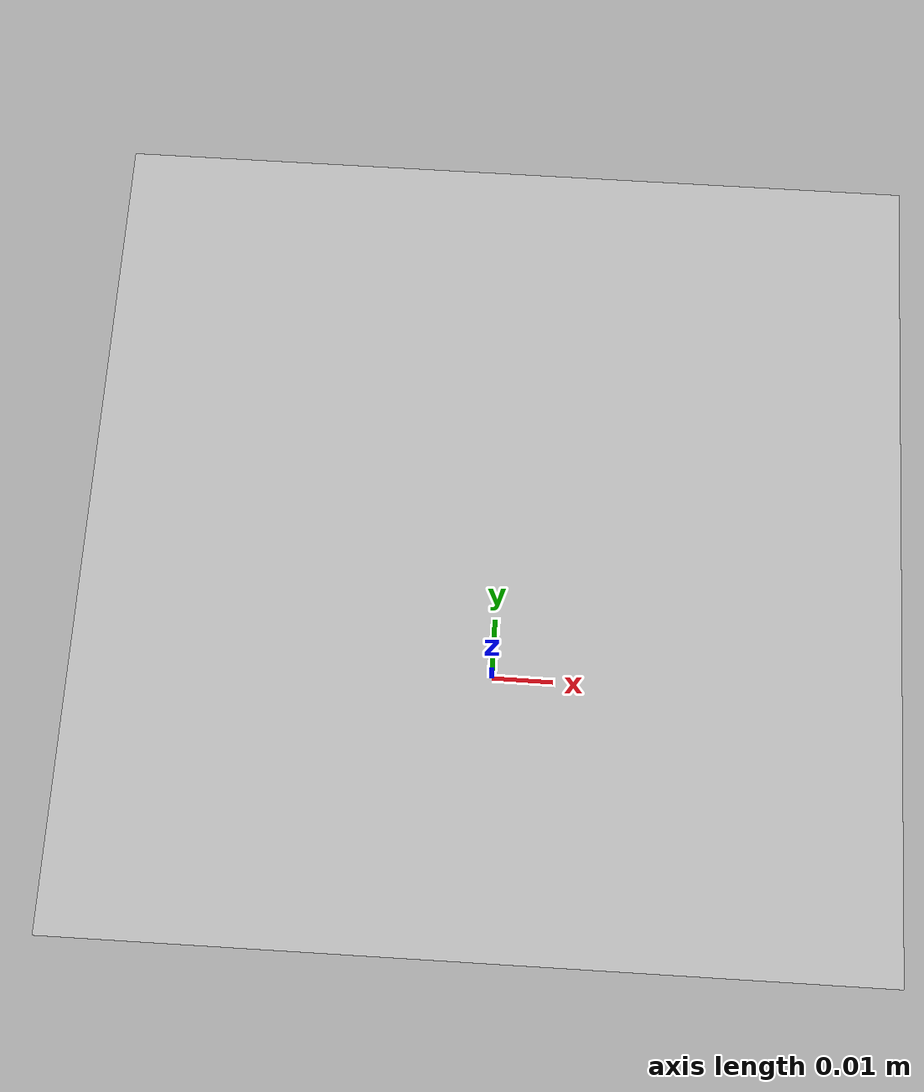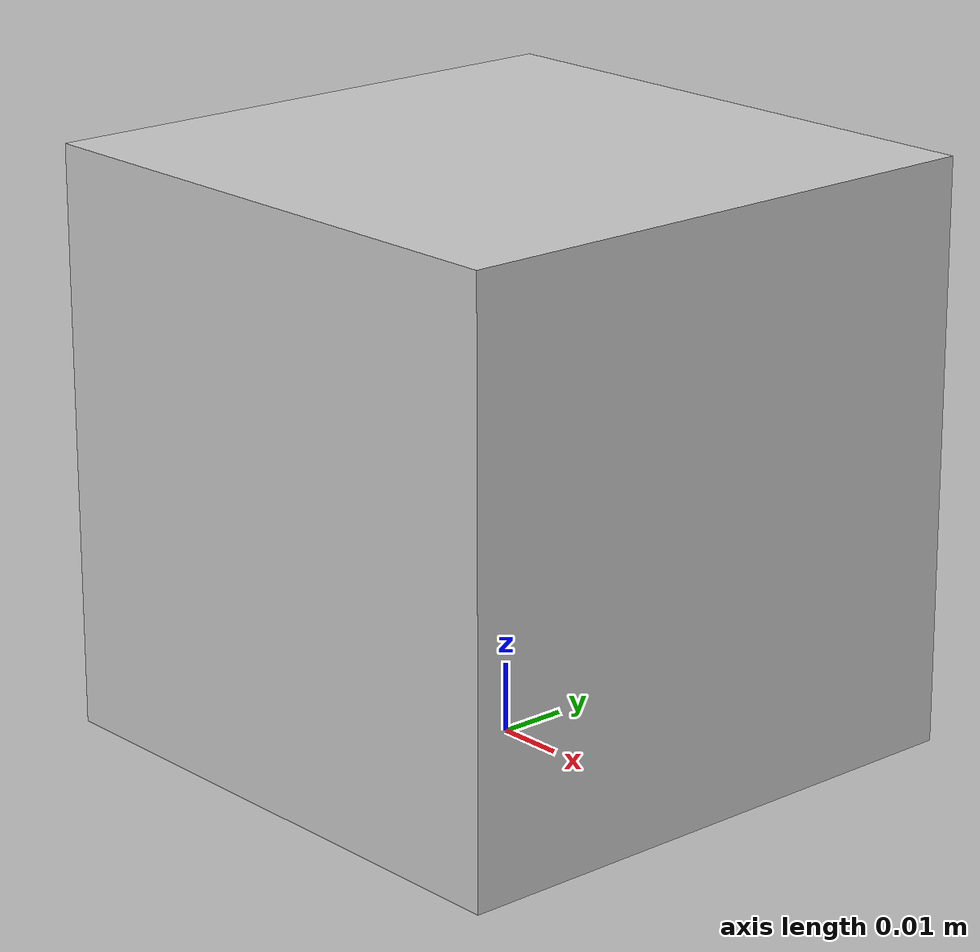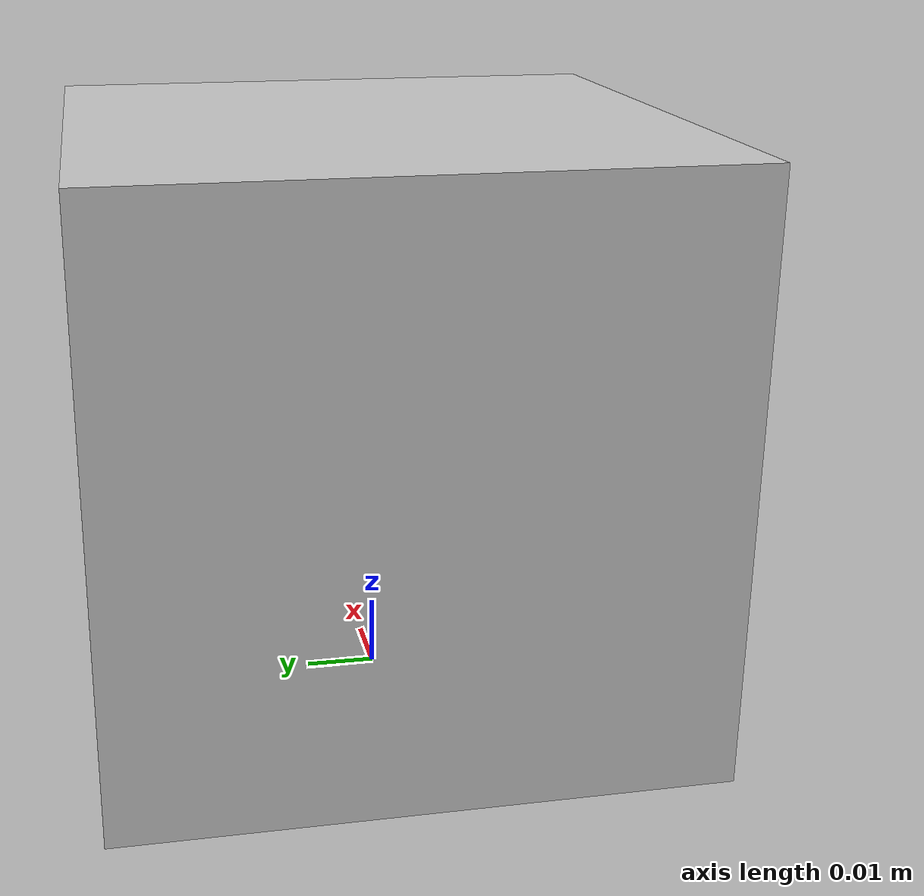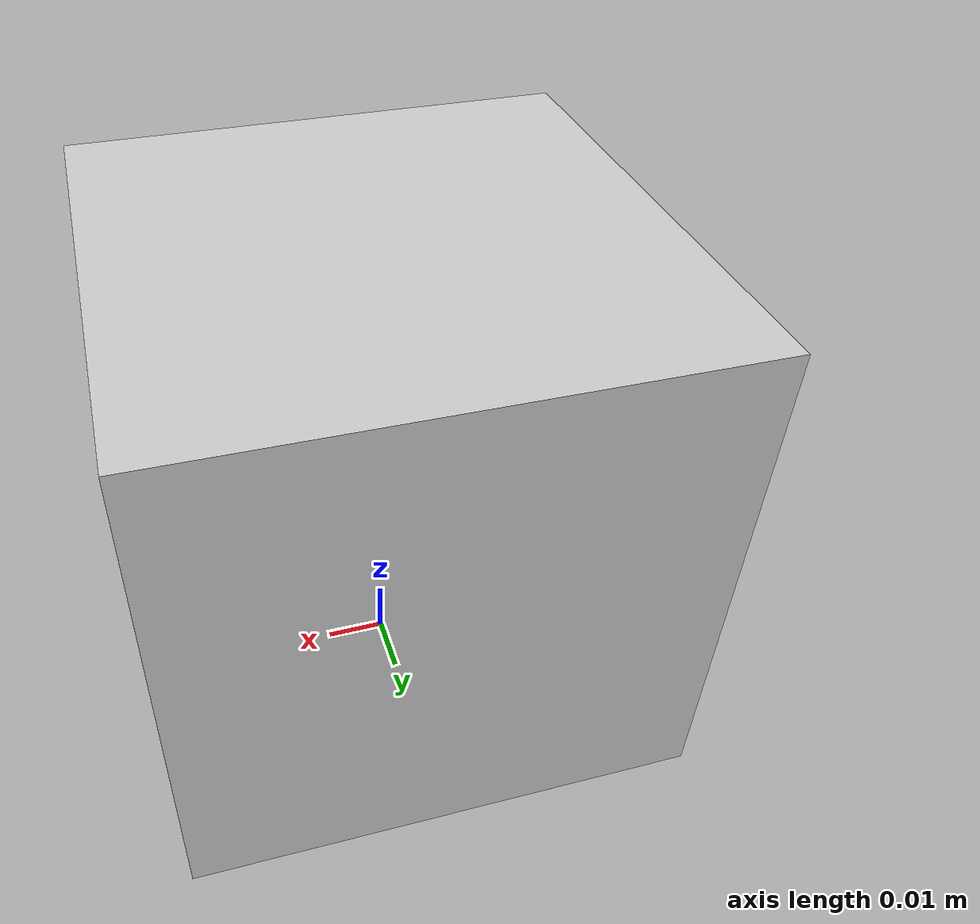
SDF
<?xml version="1.0" ?>
<sdf version="1.6">
  <model name="cardboard_box">
    <pose>0 0 0 0 0 0</pose>
    <link name="link">
      <inertial>
        <mass>0.001</mass>
        <inertia>
          <ixx>0.00016667</ixx>
          <ixy>0</ixy>
          <ixz>0</ixz>
          <iyy>0.00016667</iyy>
          <iyz>0.1</iyz>
          <izz>0.00016667</izz>
        </inertia>
      </inertial>
      <collision name="collision">
        <geometry>
          <box>
            <size>0.3 0.3 0.3</size>
          </box>
        </geometry>
        <surface>
          <friction>
            <ode>
              <mu>1.0</mu>
              <mu2>1.0</mu2>
            </ode>
          </friction>
          <contact>
            <ode>
              <kp>10000000.0</kp>
              <kd>1.0</kd>
              <min_depth>0.001</min_depth>
              <max_vel>0.1</max_vel>
            </ode>
          </contact>
        </surface>
      </collision>
      <visual name="visual">
        <pose>0 0 0 0 0 0</pose>
        <geometry>
          <mesh>
            <uri>model://cardboard_box/meshes/cardboard_box.dae</uri>
            <scale>0.3 0.3 0.3</scale>
          </mesh>
        </geometry>
      </visual>
    </link>
  </model>
</sdf>
